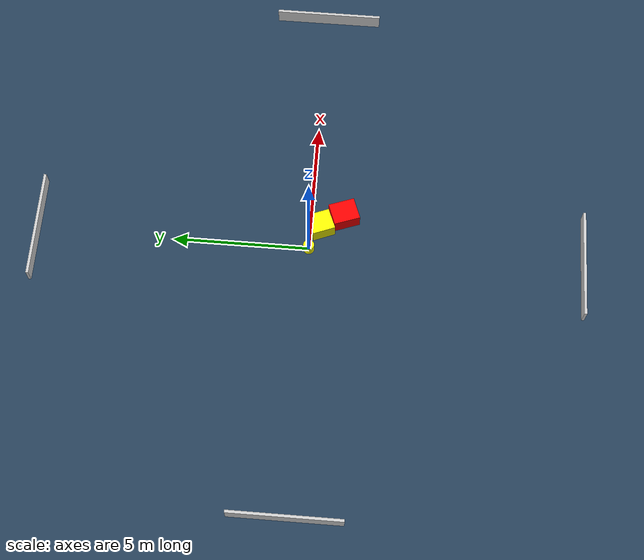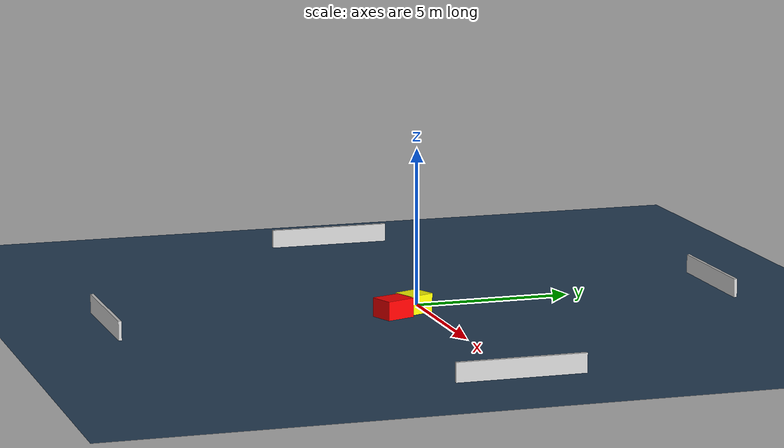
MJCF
<?xml version="1.0" ?>
<mujoco model="generated_environment">
  <option timestep="0.01" integrator="RK4" cone="elliptic"/>
  <default>
    <geom density="1"/>
  </default>
  <asset>
    <texture builtin="gradient" height="3072" name="skybox" rgb1="0.3 0.5 0.7" rgb2="0 0 0" type="skybox" width="512"/>
    <texture builtin="checker" height="300" name="groundplane" rgb1="0.2 0.3 0.4" rgb2="0.1 0.2 0.3" type="2d" width="300"/>
    <material name="groundplane" reflectance="0.2" texrepeat="5 5" texture="groundplane"/>
  </asset>
  <worldbody>
    <light dir="0 0 -1" directional="true" pos="0 0 1.5"/>
    <geom condim="3" friction="0.5 0.005 0.001" material="groundplane" name="floor" pos="0 0 0" size="0 0 0.05" type="plane"/>
    <body name="walls">
      <geom name="wall_1" condim="4" pos="-10.0 0.0 0.3" rgba="0.800000011920929 0.800000011920929 0.800000011920929 1.0" size="0.05 2.0 0.3" type="box"/>
      <geom name="wall_2" condim="4" pos="10.0 0.0 0.3" rgba="0.800000011920929 0.800000011920929 0.800000011920929 1.0" size="0.05 2.0 0.3" type="box"/>
      <geom name="wall_3" condim="4" pos="0.0 -10.0 0.3" rgba="0.800000011920929 0.800000011920929 0.800000011920929 1.0" size="2.0 0.05 0.3" type="box"/>
      <geom name="wall_4" condim="4" pos="0.0 10.0 0.3" rgba="0.800000011920929 0.800000011920929 0.800000011920929 1.0" size="2.0 0.05 0.3" type="box"/>
    </body>
    <body name="robot">
      <joint name="joint_x" type="slide" pos="0 0 0" axis="1 0 0"/>
      <joint name="joint_y" type="slide" pos="0 0 0" axis="0 1 0"/>
      <geom name="robot" type="cylinder" pos="0.0 0.0 0.2" size="0.2 0.2 0.0" mass="5.0" friction="1.0 0.005 0.0001" condim="4" rgba="1.0 1.0 0.0 1.0"/>
    </body>
    <body name="obstacle_1_movable">
      <geom name="obstacle_1_movable" condim="4" pos="0.8842259313078652 -0.3794874267235427 0.3" euler="0 0 292.0990123494124" friction="0.0 0.005 0.001" rgba="1.0 1.0 0.0 1.0" size="0.41995602415601174 0.3933541235112812 0.3" type="box" mass="0.1"/>
      <joint type="free"/>
    </body>
    <body name="obstacle_2_static">
      <geom name="obstacle_2_static" condim="4" pos="1.3631542099324294 -1.1992805121200532 0.3" euler="0 0 20.12580806835258" friction="0.0 0.005 0.001" rgba="1.0 0.0 0.0 1.0" size="0.40734102523726173 0.4852979281987422 0.3" type="box"/>
    </body>
  </worldbody>
  <actuator>
    <motor name="actuator_x" joint="joint_x" gear="1" ctrlrange="-1 1"/>
    <motor name="actuator_y" joint="joint_y" gear="1" ctrlrange="-1 1"/>
  </actuator>
</mujoco>
